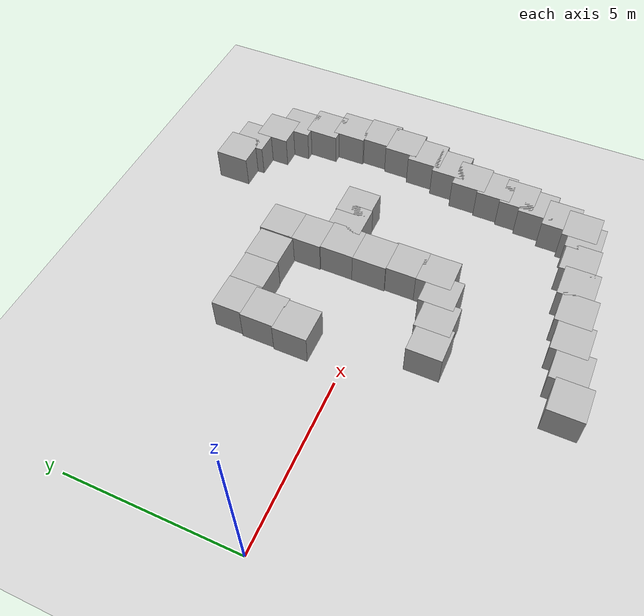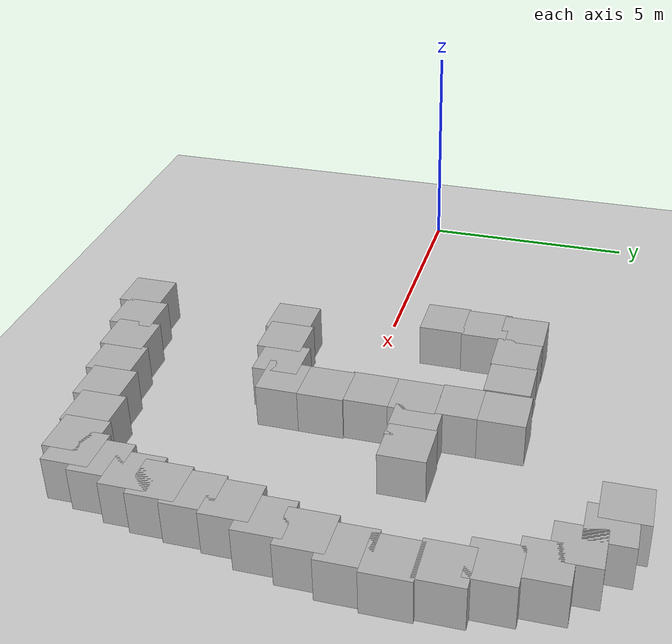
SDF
<sdf version="1.10">
 <world name="empty">
  <model name="ground_plane">
   <static>true</static>
   <link name="link">
    <collision name="collision">
     <geometry><plane><normal>0 0 1</normal><size>100 100</size></plane></geometry>
    </collision>
    <visual name="visual">
     <geometry><plane><normal>0 0 1</normal><size>100 100</size></plane></geometry>
     <material>
      <ambient>0.800000012 0.800000012 0.800000012 1</ambient>
      <diffuse>0.800000012 0.800000012 0.800000012 1</diffuse>
      <specular>0.800000012 0.800000012 0.800000012 1</specular>
     </material>
    </visual>
    <inertial>
     <mass>1</mass>
     <inertia><ixx>1</ixx><ixy>0</ixy><ixz>0</ixz><iyy>1</iyy><iyz>0</iyz><izz>1</izz></inertia>
    </inertial>
   </link>
  </model>
  <model name="box_23">
   <pose>6.3800545026282744 -5.7166944303365774 0.5 0 0 0</pose>
   <link name="box_link">
    <inertial>
     <inertia><ixx>0.16666</ixx><ixy>0</ixy><ixz>0</ixz><iyy>0.16666</iyy><iyz>0</iyz><izz>0.16666</izz></inertia>
     <mass>1</mass>
    </inertial>
    <collision name="box_collision"><geometry><box><size>1 1 1</size></box></geometry></collision>
    <visual name="box_visual">
     <geometry><box><size>1 1 1</size></box></geometry>
     <material>
      <ambient>0.300000012 0.300000012 0.300000012 1</ambient>
      <diffuse>0.699999988 0.699999988 0.699999988 1</diffuse>
      <specular>1 1 1 1</specular>
     </material>
    </visual>
   </link>
   <static>false</static>
  </model>
  <model name="box_12">
   <pose>5.8087893786202685 1.4439879179473705 0.5 0 0 0</pose>
   <link name="box_link">
    <inertial>
     <inertia><ixx>0.16666</ixx><ixy>0</ixy><ixz>0</ixz><iyy>0.16666</iyy><iyz>0</iyz><izz>0.16666</izz></inertia>
     <mass>1</mass>
    </inertial>
    <collision name="box_collision"><geometry><box><size>1 1 1</size></box></geometry></collision>
    <visual name="box_visual">
     <geometry><box><size>1 1 1</size></box></geometry>
     <material>
      <ambient>0.300000012 0.300000012 0.300000012 1</ambient>
      <diffuse>0.699999988 0.699999988 0.699999988 1</diffuse>
      <specular>1 1 1 1</specular>
     </material>
    </visual>
   </link>
   <static>false</static>
  </model>
  <model name="box_25">
   <pose>5.8517579443803838 2.4101741040455433 0.5 0 0 0</pose>
   <link name="box_link">
    <inertial>
     <inertia><ixx>0.16666</ixx><ixy>0</ixy><ixz>0</ixz><iyy>0.16666</iyy><iyz>0</iyz><izz>0.16666</izz></inertia>
     <mass>1</mass>
    </inertial>
    <collision name="box_collision"><geometry><box><size>1 1 1</size></box></geometry></collision>
    <visual name="box_visual">
     <geometry><box><size>1 1 1</size></box></geometry>
     <material>
      <ambient>0.300000012 0.300000012 0.300000012 1</ambient>
      <diffuse>0.699999988 0.699999988 0.699999988 1</diffuse>
      <specular>1 1 1 1</specular>
     </material>
    </visual>
   </link>
   <static>false</static>
  </model>
  <model name="box_26">
   <pose>5.8927248326563539 3.268424505770394 0.5 0 0 0</pose>
   <link name="box_link">
    <inertial>
     <inertia><ixx>0.16666</ixx><ixy>0</ixy><ixz>0</ixz><iyy>0.16666</iyy><iyz>0</iyz><izz>0.16666</izz></inertia>
     <mass>1</mass>
    </inertial>
    <collision name="box_collision"><geometry><box><size>1 1 1</size></box></geometry></collision>
    <visual name="box_visual">
     <geometry><box><size>1 1 1</size></box></geometry>
     <material>
      <ambient>0.300000012 0.300000012 0.300000012 1</ambient>
      <diffuse>0.699999988 0.699999988 0.699999988 1</diffuse>
      <specular>1 1 1 1</specular>
     </material>
    </visual>
   </link>
   <static>false</static>
  </model>
  <model name="box_27">
   <pose>6.8087810250940102 3.2526857823150541 0.5 0 0 0</pose>
   <link name="box_link">
    <inertial>
     <inertia><ixx>0.16666</ixx><ixy>0</ixy><ixz>0</ixz><iyy>0.16666</iyy><iyz>0</iyz><izz>0.16666</izz></inertia>
     <mass>1</mass>
    </inertial>
    <collision name="box_collision"><geometry><box><size>1 1 1</size></box></geometry></collision>
    <visual name="box_visual">
     <geometry><box><size>1 1 1</size></box></geometry>
     <material>
      <ambient>0.300000012 0.300000012 0.300000012 1</ambient>
      <diffuse>0.699999988 0.699999988 0.699999988 1</diffuse>
      <specular>1 1 1 1</specular>
     </material>
    </visual>
   </link>
   <static>false</static>
  </model>
  <model name="box_28">
   <pose>7.7779253453137667 3.2719178478107427 0.5 0 0 0</pose>
   <link name="box_link">
    <inertial>
     <inertia><ixx>0.16666</ixx><ixy>0</ixy><ixz>0</ixz><iyy>0.16666</iyy><iyz>0</iyz><izz>0.16666</izz></inertia>
     <mass>1</mass>
    </inertial>
    <collision name="box_collision"><geometry><box><size>1 1 1</size></box></geometry></collision>
    <visual name="box_visual">
     <geometry><box><size>1 1 1</size></box></geometry>
     <material>
      <ambient>0.300000012 0.300000012 0.300000012 1</ambient>
      <diffuse>0.699999988 0.699999988 0.699999988 1</diffuse>
      <specular>1 1 1 1</specular>
     </material>
    </visual>
   </link>
   <static>false</static>
  </model>
  <model name="box_29">
   <pose>8.8106372363046841 3.3335591944136373 0.5 0 0 0</pose>
   <link name="box_link">
    <inertial>
     <inertia><ixx>0.16666</ixx><ixy>0</ixy><ixz>0</ixz><iyy>0.16666</iyy><iyz>0</iyz><izz>0.16666</izz></inertia>
     <mass>1</mass>
    </inertial>
    <collision name="box_collision"><geometry><box><size>1 1 1</size></box></geometry></collision>
    <visual name="box_visual">
     <geometry><box><size>1 1 1</size></box></geometry>
     <material>
      <ambient>0.300000012 0.300000012 0.300000012 1</ambient>
      <diffuse>0.699999988 0.699999988 0.699999988 1</diffuse>
      <specular>1 1 1 1</specular>
     </material>
    </visual>
   </link>
   <static>false</static>
  </model>
  <model name="box_30">
   <pose>8.8059222017362266 2.4511884276291944 0.5 0 0 0</pose>
   <link name="box_link">
    <inertial>
     <inertia><ixx>0.16666</ixx><ixy>0</ixy><ixz>0</ixz><iyy>0.16666</iyy><iyz>0</iyz><izz>0.16666</izz></inertia>
     <mass>1</mass>
    </inertial>
    <collision name="box_collision"><geometry><box><size>1 1 1</size></box></geometry></collision>
    <visual name="box_visual">
     <geometry><box><size>1 1 1</size></box></geometry>
     <material>
      <ambient>0.300000012 0.300000012 0.300000012 1</ambient>
      <diffuse>0.699999988 0.699999988 0.699999988 1</diffuse>
      <specular>1 1 1 1</specular>
     </material>
    </visual>
   </link>
   <static>false</static>
  </model>
  <model name="box_31">
   <pose>8.8387589431408919 1.4581742702229867 0.5 0 0 0</pose>
   <link name="box_link">
    <inertial>
     <inertia><ixx>0.16666</ixx><ixy>0</ixy><ixz>0</ixz><iyy>0.16666</iyy><iyz>0</iyz><izz>0.16666</izz></inertia>
     <mass>1</mass>
    </inertial>
    <collision name="box_collision"><geometry><box><size>1 1 1</size></box></geometry></collision>
    <visual name="box_visual">
     <geometry><box><size>1 1 1</size></box></geometry>
     <material>
      <ambient>0.300000012 0.300000012 0.300000012 1</ambient>
      <diffuse>0.699999988 0.699999988 0.699999988 1</diffuse>
      <specular>1 1 1 1</specular>
     </material>
    </visual>
   </link>
   <static>false</static>
  </model>
  <model name="box_32">
   <pose>8.8335183106515327 0.46504005011771632 0.5 0 0 0</pose>
   <link name="box_link">
    <inertial>
     <inertia><ixx>0.16666</ixx><ixy>0</ixy><ixz>0</ixz><iyy>0.16666</iyy><iyz>0</iyz><izz>0.16666</izz></inertia>
     <mass>1</mass>
    </inertial>
    <collision name="box_collision"><geometry><box><size>1 1 1</size></box></geometry></collision>
    <visual name="box_visual">
     <geometry><box><size>1 1 1</size></box></geometry>
     <material>
      <ambient>0.300000012 0.300000012 0.300000012 1</ambient>
      <diffuse>0.699999988 0.699999988 0.699999988 1</diffuse>
      <specular>1 1 1 1</specular>
     </material>
    </visual>
   </link>
   <static>false</static>
  </model>
  <model name="box_33">
   <pose>8.8688209358416348 -0.49081764313635823 0.5 0 0 0</pose>
   <link name="box_link">
    <inertial>
     <inertia><ixx>0.16666</ixx><ixy>0</ixy><ixz>0</ixz><iyy>0.16666</iyy><iyz>0</iyz><izz>0.16666</izz></inertia>
     <mass>1</mass>
    </inertial>
    <collision name="box_collision"><geometry><box><size>1 1 1</size></box></geometry></collision>
    <visual name="box_visual">
     <geometry><box><size>1 1 1</size></box></geometry>
     <material>
      <ambient>0.300000012 0.300000012 0.300000012 1</ambient>
      <diffuse>0.699999988 0.699999988 0.699999988 1</diffuse>
      <specular>1 1 1 1</specular>
     </material>
    </visual>
   </link>
   <static>false</static>
  </model>
  <model name="box_34">
   <pose>8.8641018260448252 -1.4099147954190574 0.5 0 0 0</pose>
   <link name="box_link">
    <inertial>
     <inertia><ixx>0.16666</ixx><ixy>0</ixy><ixz>0</ixz><iyy>0.16666</iyy><iyz>0</iyz><izz>0.16666</izz></inertia>
     <mass>1</mass>
    </inertial>
    <collision name="box_collision"><geometry><box><size>1 1 1</size></box></geometry></collision>
    <visual name="box_visual">
     <geometry><box><size>1 1 1</size></box></geometry>
     <material>
      <ambient>0.300000012 0.300000012 0.300000012 1</ambient>
      <diffuse>0.699999988 0.699999988 0.699999988 1</diffuse>
      <specular>1 1 1 1</specular>
     </material>
    </visual>
   </link>
   <static>false</static>
  </model>
  <model name="box_35">
   <pose>8.2271469442576848 -1.7107733260163194 0.5 0 0 0</pose>
   <link name="box_link">
    <inertial>
     <inertia><ixx>0.16666</ixx><ixy>0</ixy><ixz>0</ixz><iyy>0.16666</iyy><iyz>0</iyz><izz>0.16666</izz></inertia>
     <mass>1</mass>
    </inertial>
    <collision name="box_collision"><geometry><box><size>1 1 1</size></box></geometry></collision>
    <visual name="box_visual">
     <geometry><box><size>1 1 1</size></box></geometry>
     <material>
      <ambient>0.300000012 0.300000012 0.300000012 1</ambient>
      <diffuse>0.699999988 0.699999988 0.699999988 1</diffuse>
      <specular>1 1 1 1</specular>
     </material>
    </visual>
   </link>
   <static>false</static>
  </model>
  <model name="box_36">
   <pose>7.4008588487448339 -1.9000680365743474 0.5 0 0 0</pose>
   <link name="box_link">
    <inertial>
     <inertia><ixx>0.16666</ixx><ixy>0</ixy><ixz>0</ixz><iyy>0.16666</iyy><iyz>0</iyz><izz>0.16666</izz></inertia>
     <mass>1</mass>
    </inertial>
    <collision name="box_collision"><geometry><box><size>1 1 1</size></box></geometry></collision>
    <visual name="box_visual">
     <geometry><box><size>1 1 1</size></box></geometry>
     <material>
      <ambient>0.300000012 0.300000012 0.300000012 1</ambient>
      <diffuse>0.699999988 0.699999988 0.699999988 1</diffuse>
      <specular>1 1 1 1</specular>
     </material>
    </visual>
   </link>
   <static>false</static>
  </model>
  <model name="box_37">
   <pose>6.6286853010144586 -1.9778923529803414 0.5 0 0 0</pose>
   <link name="box_link">
    <inertial>
     <inertia><ixx>0.16666</ixx><ixy>0</ixy><ixz>0</ixz><iyy>0.16666</iyy><iyz>0</iyz><izz>0.16666</izz></inertia>
     <mass>1</mass>
    </inertial>
    <collision name="box_collision"><geometry><box><size>1 1 1</size></box></geometry></collision>
    <visual name="box_visual">
     <geometry><box><size>1 1 1</size></box></geometry>
     <material>
      <ambient>0.300000012 0.300000012 0.300000012 1</ambient>
      <diffuse>0.699999988 0.699999988 0.699999988 1</diffuse>
      <specular>1 1 1 1</specular>
     </material>
    </visual>
   </link>
   <static>false</static>
  </model>
  <model name="box_40">
   <pose>7.30355790029334 -5.5262407279338781 0.5 0 0 0</pose>
   <link name="box_link">
    <inertial>
     <inertia><ixx>0.16666</ixx><ixy>0</ixy><ixz>0</ixz><iyy>0.16666</iyy><iyz>0</iyz><izz>0.16666</izz></inertia>
     <mass>1</mass>
    </inertial>
    <collision name="box_collision"><geometry><box><size>1 1 1</size></box></geometry></collision>
    <visual name="box_visual">
     <geometry><box><size>1 1 1</size></box></geometry>
     <material>
      <ambient>0.300000012 0.300000012 0.300000012 1</ambient>
      <diffuse>0.699999988 0.699999988 0.699999988 1</diffuse>
      <specular>1 1 1 1</specular>
     </material>
    </visual>
   </link>
   <static>false</static>
  </model>
  <model name="box_41">
   <pose>8.1663256536314517 -5.3309950902728112 0.5 0 0 0</pose>
   <link name="box_link">
    <inertial>
     <inertia><ixx>0.16666</ixx><ixy>0</ixy><ixz>0</ixz><iyy>0.16666</iyy><iyz>0</iyz><izz>0.16666</izz></inertia>
     <mass>1</mass>
    </inertial>
    <collision name="box_collision"><geometry><box><size>1 1 1</size></box></geometry></collision>
    <visual name="box_visual">
     <geometry><box><size>1 1 1</size></box></geometry>
     <material>
      <ambient>0.300000012 0.300000012 0.300000012 1</ambient>
      <diffuse>0.699999988 0.699999988 0.699999988 1</diffuse>
      <specular>1 1 1 1</specular>
     </material>
    </visual>
   </link>
   <static>false</static>
  </model>
  <model name="box_42">
   <pose>9.0865089061986115 -5.2077514594578034 0.5 0 0 0</pose>
   <link name="box_link">
    <inertial>
     <inertia><ixx>0.16666</ixx><ixy>0</ixy><ixz>0</ixz><iyy>0.16666</iyy><iyz>0</iyz><izz>0.16666</izz></inertia>
     <mass>1</mass>
    </inertial>
    <collision name="box_collision"><geometry><box><size>1 1 1</size></box></geometry></collision>
    <visual name="box_visual">
     <geometry><box><size>1 1 1</size></box></geometry>
     <material>
      <ambient>0.300000012 0.300000012 0.300000012 1</ambient>
      <diffuse>0.699999988 0.699999988 0.699999988 1</diffuse>
      <specular>1 1 1 1</specular>
     </material>
    </visual>
   </link>
   <static>false</static>
  </model>
  <model name="box_43">
   <pose>9.9775613604029552 -5.0430003750853505 0.5 0 0 0</pose>
   <link name="box_link">
    <inertial>
     <inertia><ixx>0.16666</ixx><ixy>0</ixy><ixz>0</ixz><iyy>0.16666</iyy><iyz>0</iyz><izz>0.16666</izz></inertia>
     <mass>1</mass>
    </inertial>
    <collision name="box_collision"><geometry><box><size>1 1 1</size></box></geometry></collision>
    <visual name="box_visual">
     <geometry><box><size>1 1 1</size></box></geometry>
     <material>
      <ambient>0.300000012 0.300000012 0.300000012 1</ambient>
      <diffuse>0.699999988 0.699999988 0.699999988 1</diffuse>
      <specular>1 1 1 1</specular>
     </material>
    </visual>
   </link>
   <static>false</static>
  </model>
  <model name="box_44">
   <pose>10.847081318629426 -4.8743915647324485 0.5 0 0 0</pose>
   <link name="box_link">
    <inertial>
     <inertia><ixx>0.16666</ixx><ixy>0</ixy><ixz>0</ixz><iyy>0.16666</iyy><iyz>0</iyz><izz>0.16666</izz></inertia>
     <mass>1</mass>
    </inertial>
    <collision name="box_collision"><geometry><box><size>1 1 1</size></box></geometry></collision>
    <visual name="box_visual">
     <geometry><box><size>1 1 1</size></box></geometry>
     <material>
      <ambient>0.300000012 0.300000012 0.300000012 1</ambient>
      <diffuse>0.699999988 0.699999988 0.699999988 1</diffuse>
      <specular>1 1 1 1</specular>
     </material>
    </visual>
   </link>
   <static>false</static>
  </model>
  <model name="box_45">
   <pose>11.688267984259303 -4.8164862711851937 0.5 0 0 0</pose>
   <link name="box_link">
    <inertial>
     <inertia><ixx>0.16666</ixx><ixy>0</ixy><ixz>0</ixz><iyy>0.16666</iyy><iyz>0</iyz><izz>0.16666</izz></inertia>
     <mass>1</mass>
    </inertial>
    <collision name="box_collision"><geometry><box><size>1 1 1</size></box></geometry></collision>
    <visual name="box_visual">
     <geometry><box><size>1 1 1</size></box></geometry>
     <material>
      <ambient>0.300000012 0.300000012 0.300000012 1</ambient>
      <diffuse>0.699999988 0.699999988 0.699999988 1</diffuse>
      <specular>1 1 1 1</specular>
     </material>
    </visual>
   </link>
   <static>false</static>
  </model>
  <model name="box_46">
   <pose>12.071988029666398 -4.6347963288648462 0.5 0 0 0</pose>
   <link name="box_link">
    <inertial>
     <inertia><ixx>0.16666</ixx><ixy>0</ixy><ixz>0</ixz><iyy>0.16666</iyy><iyz>0</iyz><izz>0.16666</izz></inertia>
     <mass>1</mass>
    </inertial>
    <collision name="box_collision"><geometry><box><size>1 1 1</size></box></geometry></collision>
    <visual name="box_visual">
     <geometry><box><size>1 1 1</size></box></geometry>
     <material>
      <ambient>0.300000012 0.300000012 0.300000012 1</ambient>
      <diffuse>0.699999988 0.699999988 0.699999988 1</diffuse>
      <specular>1 1 1 1</specular>
     </material>
    </visual>
   </link>
   <static>false</static>
  </model>
  <model name="box_47">
   <pose>12.231830443070578 -4.0075817405905276 0.5 0 0 0</pose>
   <link name="box_link">
    <inertial>
     <inertia><ixx>0.16666</ixx><ixy>0</ixy><ixz>0</ixz><iyy>0.16666</iyy><iyz>0</iyz><izz>0.16666</izz></inertia>
     <mass>1</mass>
    </inertial>
    <collision name="box_collision"><geometry><box><size>1 1 1</size></box></geometry></collision>
    <visual name="box_visual">
     <geometry><box><size>1 1 1</size></box></geometry>
     <material>
      <ambient>0.300000012 0.300000012 0.300000012 1</ambient>
      <diffuse>0.699999988 0.699999988 0.699999988 1</diffuse>
      <specular>1 1 1 1</specular>
     </material>
    </visual>
   </link>
   <static>false</static>
  </model>
  <model name="box_48">
   <pose>12.438511157612039 -3.2492962272078287 0.5 0 0 0</pose>
   <link name="box_link">
    <inertial>
     <inertia><ixx>0.16666</ixx><ixy>0</ixy><ixz>0</ixz><iyy>0.16666</iyy><iyz>0</iyz><izz>0.16666</izz></inertia>
     <mass>1</mass>
    </inertial>
    <collision name="box_collision"><geometry><box><size>1 1 1</size></box></geometry></collision>
    <visual name="box_visual">
     <geometry><box><size>1 1 1</size></box></geometry>
     <material>
      <ambient>0.300000012 0.300000012 0.300000012 1</ambient>
      <diffuse>0.699999988 0.699999988 0.699999988 1</diffuse>
      <specular>1 1 1 1</specular>
     </material>
    </visual>
   </link>
   <static>false</static>
  </model>
  <model name="box_49">
   <pose>12.564761607585398 -2.6407707736417656 0.5 0 0 0</pose>
   <link name="box_link">
    <inertial>
     <inertia><ixx>0.16666</ixx><ixy>0</ixy><ixz>0</ixz><iyy>0.16666</iyy><iyz>0</iyz><izz>0.16666</izz></inertia>
     <mass>1</mass>
    </inertial>
    <collision name="box_collision"><geometry><box><size>1 1 1</size></box></geometry></collision>
    <visual name="box_visual">
     <geometry><box><size>1 1 1</size></box></geometry>
     <material>
      <ambient>0.300000012 0.300000012 0.300000012 1</ambient>
      <diffuse>0.699999988 0.699999988 0.699999988 1</diffuse>
      <specular>1 1 1 1</specular>
     </material>
    </visual>
   </link>
   <static>false</static>
  </model>
  <model name="box_50">
   <pose>12.64867084559962 -1.9161034027971844 0.5 0 0 0</pose>
   <link name="box_link">
    <inertial>
     <inertia><ixx>0.16666</ixx><ixy>0</ixy><ixz>0</ixz><iyy>0.16666</iyy><iyz>0</iyz><izz>0.16666</izz></inertia>
     <mass>1</mass>
    </inertial>
    <collision name="box_collision"><geometry><box><size>1 1 1</size></box></geometry></collision>
    <visual name="box_visual">
     <geometry><box><size>1 1 1</size></box></geometry>
     <material>
      <ambient>0.300000012 0.300000012 0.300000012 1</ambient>
      <diffuse>0.699999988 0.699999988 0.699999988 1</diffuse>
      <specular>1 1 1 1</specular>
     </material>
    </visual>
   </link>
   <static>false</static>
  </model>
  <model name="box_51">
   <pose>12.732681115670358 -1.1143633817087923 0.5 0 0 0</pose>
   <link name="box_link">
    <inertial>
     <inertia><ixx>0.16666</ixx><ixy>0</ixy><ixz>0</ixz><iyy>0.16666</iyy><iyz>0</iyz><izz>0.16666</izz></inertia>
     <mass>1</mass>
    </inertial>
    <collision name="box_collision"><geometry><box><size>1 1 1</size></box></geometry></collision>
    <visual name="box_visual">
     <geometry><box><size>1 1 1</size></box></geometry>
     <material>
      <ambient>0.300000012 0.300000012 0.300000012 1</ambient>
      <diffuse>0.699999988 0.699999988 0.699999988 1</diffuse>
      <specular>1 1 1 1</specular>
     </material>
    </visual>
   </link>
   <static>false</static>
  </model>
  <model name="box_52">
   <pose>9.6904758549434931 1.6153968303725712 0.5 0 0 0</pose>
   <link name="box_link">
    <inertial>
     <inertia><ixx>0.16666</ixx><ixy>0</ixy><ixz>0</ixz><iyy>0.16666</iyy><iyz>0</iyz><izz>0.16666</izz></inertia>
     <mass>1</mass>
    </inertial>
    <collision name="box_collision"><geometry><box><size>1 1 1</size></box></geometry></collision>
    <visual name="box_visual">
     <geometry><box><size>1 1 1</size></box></geometry>
     <material>
      <ambient>0.300000012 0.300000012 0.300000012 1</ambient>
      <diffuse>0.699999988 0.699999988 0.699999988 1</diffuse>
      <specular>1 1 1 1</specular>
     </material>
    </visual>
   </link>
   <static>false</static>
  </model>
  <model name="box_53">
   <pose>10.352201714877285 1.6372847724901778 0.5 0 0 0</pose>
   <link name="box_link">
    <inertial>
     <inertia><ixx>0.16666</ixx><ixy>0</ixy><ixz>0</ixz><iyy>0.16666</iyy><iyz>0</iyz><izz>0.16666</izz></inertia>
     <mass>1</mass>
    </inertial>
    <collision name="box_collision"><geometry><box><size>1 1 1</size></box></geometry></collision>
    <visual name="box_visual">
     <geometry><box><size>1 1 1</size></box></geometry>
     <material>
      <ambient>0.300000012 0.300000012 0.300000012 1</ambient>
      <diffuse>0.699999988 0.699999988 0.699999988 1</diffuse>
      <specular>1 1 1 1</specular>
     </material>
    </visual>
   </link>
   <static>false</static>
  </model>
  <model name="box_54">
   <pose>12.984106627307563 -0.38564006074308677 0.5 0 0 0</pose>
   <link name="box_link">
    <inertial>
     <inertia><ixx>0.16666</ixx><ixy>0</ixy><ixz>0</ixz><iyy>0.16666</iyy><iyz>0</iyz><izz>0.16666</izz></inertia>
     <mass>1</mass>
    </inertial>
    <collision name="box_collision"><geometry><box><size>1 1 1</size></box></geometry></collision>
    <visual name="box_visual">
     <geometry><box><size>1 1 1</size></box></geometry>
     <material>
      <ambient>0.300000012 0.300000012 0.300000012 1</ambient>
      <diffuse>0.699999988 0.699999988 0.699999988 1</diffuse>
      <specular>1 1 1 1</specular>
     </material>
    </visual>
   </link>
   <static>false</static>
  </model>
  <model name="box_55">
   <pose>13.153869507131258 0.45988125865379592 0.5 0 0 0</pose>
   <link name="box_link">
    <inertial>
     <inertia><ixx>0.16666</ixx><ixy>0</ixy><ixz>0</ixz><iyy>0.16666</iyy><iyz>0</iyz><izz>0.16666</izz></inertia>
     <mass>1</mass>
    </inertial>
    <collision name="box_collision"><geometry><box><size>1 1 1</size></box></geometry></collision>
    <visual name="box_visual">
     <geometry><box><size>1 1 1</size></box></geometry>
     <material>
      <ambient>0.300000012 0.300000012 0.300000012 1</ambient>
      <diffuse>0.699999988 0.699999988 0.699999988 1</diffuse>
      <specular>1 1 1 1</specular>
     </material>
    </visual>
   </link>
   <static>false</static>
  </model>
  <model name="box_56">
   <pose>13.321610749249803 1.2702514545363113 0.5 0 0 0</pose>
   <link name="box_link">
    <inertial>
     <inertia><ixx>0.16666</ixx><ixy>0</ixy><ixz>0</ixz><iyy>0.16666</iyy><iyz>0</iyz><izz>0.16666</izz></inertia>
     <mass>1</mass>
    </inertial>
    <collision name="box_collision"><geometry><box><size>1 1 1</size></box></geometry></collision>
    <visual name="box_visual">
     <geometry><box><size>1 1 1</size></box></geometry>
     <material>
      <ambient>0.300000012 0.300000012 0.300000012 1</ambient>
      <diffuse>0.699999988 0.699999988 0.699999988 1</diffuse>
      <specular>1 1 1 1</specular>
     </material>
    </visual>
   </link>
   <static>false</static>
  </model>
  <model name="box_57">
   <pose>13.408196666452133 2.1177694421381865 0.5 0 0 0</pose>
   <link name="box_link">
    <inertial>
     <inertia><ixx>0.16666</ixx><ixy>0</ixy><ixz>0</ixz><iyy>0.16666</iyy><iyz>0</iyz><izz>0.16666</izz></inertia>
     <mass>1</mass>
    </inertial>
    <collision name="box_collision"><geometry><box><size>1 1 1</size></box></geometry></collision>
    <visual name="box_visual">
     <geometry><box><size>1 1 1</size></box></geometry>
     <material>
      <ambient>0.300000012 0.300000012 0.300000012 1</ambient>
      <diffuse>0.699999988 0.699999988 0.699999988 1</diffuse>
      <specular>1 1 1 1</specular>
     </material>
    </visual>
   </link>
   <static>false</static>
  </model>
  <model name="box_58">
   <pose>13.332006666993616 3.037132205899141 0.5 0 0 0</pose>
   <link name="box_link">
    <inertial>
     <inertia><ixx>0.16666</ixx><ixy>0</ixy><ixz>0</ixz><iyy>0.16666</iyy><iyz>0</iyz><izz>0.16666</izz></inertia>
     <mass>1</mass>
    </inertial>
    <collision name="box_collision"><geometry><box><size>1 1 1</size></box></geometry></collision>
    <visual name="box_visual">
     <geometry><box><size>1 1 1</size></box></geometry>
     <material>
      <ambient>0.300000012 0.300000012 0.300000012 1</ambient>
      <diffuse>0.699999988 0.699999988 0.699999988 1</diffuse>
      <specular>1 1 1 1</specular>
     </material>
    </visual>
   </link>
   <static>false</static>
  </model>
  <model name="box_59">
   <pose>13.089118351446215 3.8699491551165215 0.5 0 0 0</pose>
   <link name="box_link">
    <inertial>
     <inertia><ixx>0.16666</ixx><ixy>0</ixy><ixz>0</ixz><iyy>0.16666</iyy><iyz>0</iyz><izz>0.16666</izz></inertia>
     <mass>1</mass>
    </inertial>
    <collision name="box_collision"><geometry><box><size>1 1 1</size></box></geometry></collision>
    <visual name="box_visual">
     <geometry><box><size>1 1 1</size></box></geometry>
     <material>
      <ambient>0.300000012 0.300000012 0.300000012 1</ambient>
      <diffuse>0.699999988 0.699999988 0.699999988 1</diffuse>
      <specular>1 1 1 1</specular>
     </material>
    </visual>
   </link>
   <static>false</static>
  </model>
  <model name="box_60">
   <pose>12.845943670427856 4.7351946154870239 0.5 0 0 0</pose>
   <link name="box_link">
    <inertial>
     <inertia><ixx>0.16666</ixx><ixy>0</ixy><ixz>0</ixz><iyy>0.16666</iyy><iyz>0</iyz><izz>0.16666</izz></inertia>
     <mass>1</mass>
    </inertial>
    <collision name="box_collision"><geometry><box><size>1 1 1</size></box></geometry></collision>
    <visual name="box_visual">
     <geometry><box><size>1 1 1</size></box></geometry>
     <material>
      <ambient>0.300000012 0.300000012 0.300000012 1</ambient>
      <diffuse>0.699999988 0.699999988 0.699999988 1</diffuse>
      <specular>1 1 1 1</specular>
     </material>
    </visual>
   </link>
   <static>false</static>
  </model>
  <model name="box_61">
   <pose>12.319793629760635 5.2363119465838031 0.5 0 0 0</pose>
   <link name="box_link">
    <inertial>
     <inertia><ixx>0.16666</ixx><ixy>0</ixy><ixz>0</ixz><iyy>0.16666</iyy><iyz>0</iyz><izz>0.16666</izz></inertia>
     <mass>1</mass>
    </inertial>
    <collision name="box_collision"><geometry><box><size>1 1 1</size></box></geometry></collision>
    <visual name="box_visual">
     <geometry><box><size>1 1 1</size></box></geometry>
     <material>
      <ambient>0.300000012 0.300000012 0.300000012 1</ambient>
      <diffuse>0.699999988 0.699999988 0.699999988 1</diffuse>
      <specular>1 1 1 1</specular>
     </material>
    </visual>
   </link>
   <static>false</static>
  </model>
  <model name="box_62">
   <pose>11.678171751151625 5.7617402632244135 0.5 0 0 0</pose>
   <link name="box_link">
    <inertial>
     <inertia><ixx>0.16666</ixx><ixy>0</ixy><ixz>0</ixz><iyy>0.16666</iyy><iyz>0</iyz><izz>0.16666</izz></inertia>
     <mass>1</mass>
    </inertial>
    <collision name="box_collision"><geometry><box><size>1 1 1</size></box></geometry></collision>
    <visual name="box_visual">
     <geometry><box><size>1 1 1</size></box></geometry>
     <material>
      <ambient>0.300000012 0.300000012 0.300000012 1</ambient>
      <diffuse>0.699999988 0.699999988 0.699999988 1</diffuse>
      <specular>1 1 1 1</specular>
     </material>
    </visual>
   </link>
   <static>false</static>
  </model>
  <model name="box_63">
   <pose>11.042139705482857 5.9799232003139107 0.5 0 0 0</pose>
   <link name="box_link">
    <inertial>
     <inertia><ixx>0.16666</ixx><ixy>0</ixy><ixz>0</ixz><iyy>0.16666</iyy><iyz>0</iyz><izz>0.16666</izz></inertia>
     <mass>1</mass>
    </inertial>
    <collision name="box_collision"><geometry><box><size>1 1 1</size></box></geometry></collision>
    <visual name="box_visual">
     <geometry><box><size>1 1 1</size></box></geometry>
     <material>
      <ambient>0.300000012 0.300000012 0.300000012 1</ambient>
      <diffuse>0.699999988 0.699999988 0.699999988 1</diffuse>
      <specular>1 1 1 1</specular>
     </material>
    </visual>
   </link>
   <static>false</static>
  </model>
 </world>
</sdf>
